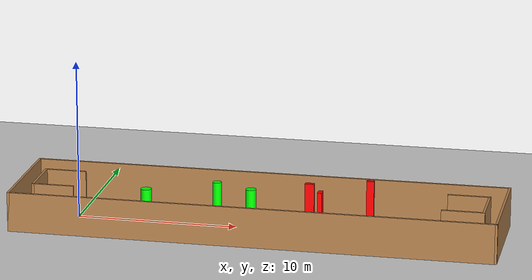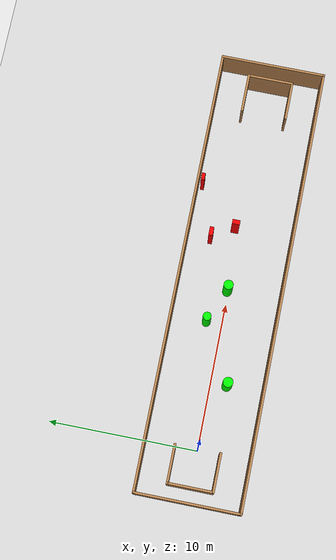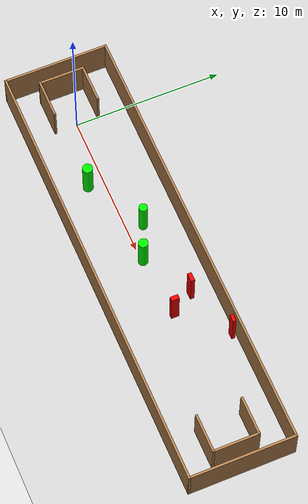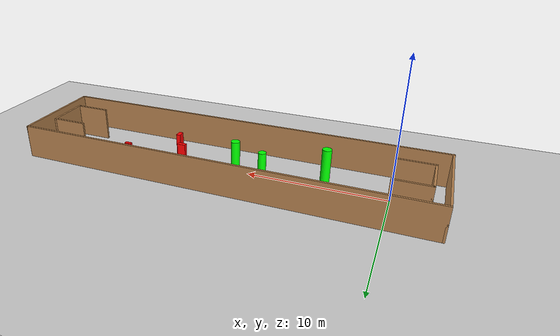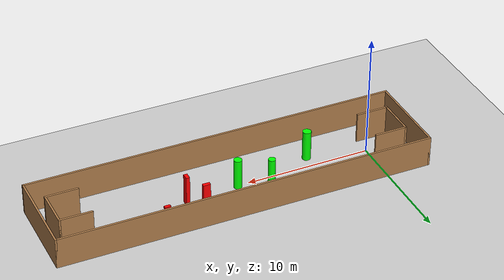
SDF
<sdf version="1.7">
 <world name="default">
  <light name="sun" type="directional">
   <pose>0 0 10 0 -0 0</pose>
   <diffuse>0.8 0.8 0.8 1</diffuse>
   <specular>0.2 0.2 0.2 1</specular>
   <attenuation>
    <range>1000</range>
    <constant>0.9</constant>
    <linear>0.01</linear>
    <quadratic>0.001</quadratic>
   </attenuation>
   <direction>-0.5 0.1 -0.9</direction>
   <spot><inner_angle>0</inner_angle><outer_angle>0</outer_angle><falloff>0</falloff></spot>
  </light>
  <model name="ground_plane">
   <static>1</static>
   <link name="link">
    <collision name="collision">
     <geometry><plane><normal>0 0 1</normal><size>100 100</size></plane></geometry>
     <surface>
      <contact><collide_bitmask>65535</collide_bitmask></contact>
      <friction><ode><mu>100</mu><mu2>50</mu2></ode></friction>
     </surface>
    </collision>
    <visual name="visual">
     <cast_shadows>0</cast_shadows>
     <geometry><plane><normal>0 0 1</normal><size>100 100</size></plane></geometry>
     <material>
      <script><uri>file://media/materials/scripts/gazebo.material</uri><name>Gazebo/Grey</name></script>
     </material>
    </visual>
   </link>
  </model>
  <gravity>0 0 -9.8</gravity>
  <magnetic_field>6e-06 2.3e-05 -4.2e-05</magnetic_field>
  <atmosphere type="adiabatic"/>
  <physics type="ode">
   <max_step_size>0.001</max_step_size>
   <real_time_factor>1</real_time_factor>
   <real_time_update_rate>1000</real_time_update_rate>
  </physics>
  <scene><ambient>0.4 0.4 0.4 1</ambient><background>0.7 0.7 0.7 1</background><shadows>1</shadows></scene>
  <spherical_coordinates>
   <surface_model>EARTH_WGS84</surface_model>
   <latitude_deg>0</latitude_deg>
   <longitude_deg>0</longitude_deg>
   <elevation>0</elevation>
   <heading_deg>0</heading_deg>
  </spherical_coordinates>
  <model name="my_base_walls">
   <link name="Wall_0">
    <collision name="Wall_0_Collision">
     <geometry><box><size>7.15 0.15 2.5</size></box></geometry>
     <pose>0 0 1.25 0 -0 0</pose>
    </collision>
    <visual name="Wall_0_Visual">
     <pose>0 0 1.25 0 -0 0</pose>
     <geometry><box><size>7.15 0.15 2.5</size></box></geometry>
     <material>
      <script><uri>file://media/materials/scripts/gazebo.material</uri><name>Gazebo/Wood</name></script>
      <ambient>1 1 1 1</ambient>
     </material>
     <meta><layer>0</layer></meta>
    </visual>
    <pose>-15 0 0 0 -0 1.5708</pose>
   </link>
   <link name="Wall_10">
    <collision name="Wall_10_Collision">
     <geometry><box><size>2.65 0.15 2.5</size></box></geometry>
     <pose>0 0 1.25 0 -0 0</pose>
    </collision>
    <visual name="Wall_10_Visual">
     <pose>0 0 1.25 0 -0 0</pose>
     <geometry><box><size>2.65 0.15 2.5</size></box></geometry>
     <material>
      <script><uri>file://media/materials/scripts/gazebo.material</uri><name>Gazebo/Wood</name></script>
      <ambient>1 1 1 1</ambient>
     </material>
     <meta><layer>0</layer></meta>
    </visual>
    <pose>-12.75 -1.5 0 0 -0 0</pose>
   </link>
   <link name="Wall_12">
    <collision name="Wall_12_Collision">
     <geometry><box><size>2.65 0.15 2.5</size></box></geometry>
     <pose>0 0 1.25 0 -0 0</pose>
    </collision>
    <visual name="Wall_12_Visual">
     <pose>0 0 1.25 0 -0 0</pose>
     <geometry><box><size>2.65 0.15 2.5</size></box></geometry>
     <material>
      <script><uri>file://media/materials/scripts/gazebo.material</uri><name>Gazebo/Wood</name></script>
      <ambient>1 1 1 1</ambient>
     </material>
     <meta><layer>0</layer></meta>
    </visual>
    <pose>-12.75 1.5 0 0 -0 0</pose>
   </link>
   <link name="Wall_14">
    <collision name="Wall_14_Collision">
     <geometry><box><size>3.15 0.15 2.5</size></box></geometry>
     <pose>0 0 1.25 0 -0 0</pose>
    </collision>
    <visual name="Wall_14_Visual">
     <pose>0 0 1.25 0 -0 0</pose>
     <geometry><box><size>3.15 0.15 2.5</size></box></geometry>
     <material>
      <script><uri>file://media/materials/scripts/gazebo.material</uri><name>Gazebo/Wood</name></script>
      <ambient>1 1 1 1</ambient>
     </material>
     <meta><layer>0</layer></meta>
    </visual>
    <pose>14 0 0 0 -0 -1.5708</pose>
   </link>
   <link name="Wall_15">
    <collision name="Wall_15_Collision">
     <geometry><box><size>2.65 0.15 2.5</size></box></geometry>
     <pose>0 0 1.25 0 -0 0</pose>
    </collision>
    <visual name="Wall_15_Visual">
     <pose>0 0 1.25 0 -0 0</pose>
     <geometry><box><size>2.65 0.15 2.5</size></box></geometry>
     <material>
      <script><uri>file://media/materials/scripts/gazebo.material</uri><name>Gazebo/Wood</name></script>
      <ambient>1 1 1 1</ambient>
     </material>
     <meta><layer>0</layer></meta>
    </visual>
    <pose>12.75 -1.5 0 0 -0 3.14159</pose>
   </link>
   <link name="Wall_17">
    <collision name="Wall_17_Collision">
     <geometry><box><size>2.65 0.15 2.5</size></box></geometry>
     <pose>0 0 1.25 0 -0 0</pose>
    </collision>
    <visual name="Wall_17_Visual">
     <pose>0 0 1.25 0 -0 0</pose>
     <geometry><box><size>2.65 0.15 2.5</size></box></geometry>
     <material>
      <script><uri>file://media/materials/scripts/gazebo.material</uri><name>Gazebo/Wood</name></script>
      <ambient>1 1 1 1</ambient>
     </material>
     <meta><layer>0</layer></meta>
    </visual>
    <pose>12.75 1.5 0 0 -0 3.14159</pose>
   </link>
   <link name="Wall_2">
    <collision name="Wall_2_Collision">
     <geometry><box><size>30.15 0.15 2.5</size></box></geometry>
     <pose>0 0 1.25 0 -0 0</pose>
    </collision>
    <visual name="Wall_2_Visual">
     <pose>0 0 1.25 0 -0 0</pose>
     <geometry><box><size>30.15 0.15 2.5</size></box></geometry>
     <material>
      <script><uri>file://media/materials/scripts/gazebo.material</uri><name>Gazebo/Wood</name></script>
      <ambient>1 1 1 1</ambient>
     </material>
     <meta><layer>0</layer></meta>
    </visual>
    <pose>-0 -3.5 0 0 -0 0</pose>
   </link>
   <link name="Wall_4">
    <collision name="Wall_4_Collision">
     <geometry><box><size>30.15 0.15 2.5</size></box></geometry>
     <pose>0 0 1.25 0 -0 0</pose>
    </collision>
    <visual name="Wall_4_Visual">
     <pose>0 0 1.25 0 -0 0</pose>
     <geometry><box><size>30.15 0.15 2.5</size></box></geometry>
     <material>
      <script><uri>file://media/materials/scripts/gazebo.material</uri><name>Gazebo/Wood</name></script>
      <ambient>1 1 1 1</ambient>
     </material>
     <meta><layer>0</layer></meta>
    </visual>
    <pose>-0 3.5 0 0 -0 0</pose>
   </link>
   <link name="Wall_6">
    <collision name="Wall_6_Collision">
     <geometry><box><size>7.15 0.15 2.5</size></box></geometry>
     <pose>0 0 1.25 0 -0 0</pose>
    </collision>
    <visual name="Wall_6_Visual">
     <pose>0 0 1.25 0 -0 0</pose>
     <geometry><box><size>7.15 0.15 2.5</size></box></geometry>
     <material>
      <script><uri>file://media/materials/scripts/gazebo.material</uri><name>Gazebo/Wood</name></script>
      <ambient>1 1 1 1</ambient>
     </material>
     <meta><layer>0</layer></meta>
    </visual>
    <pose>15 0 0 0 -0 -1.5708</pose>
   </link>
   <link name="Wall_9">
    <collision name="Wall_9_Collision">
     <geometry><box><size>3.15 0.15 2.5</size></box></geometry>
     <pose>0 0 1.25 0 -0 0</pose>
    </collision>
    <visual name="Wall_9_Visual">
     <pose>0 0 1.25 0 -0 0</pose>
     <geometry><box><size>3.15 0.15 2.5</size></box></geometry>
     <material>
      <script><uri>file://media/materials/scripts/gazebo.material</uri><name>Gazebo/Wood</name></script>
      <ambient>1 1 1 1</ambient>
     </material>
     <meta><layer>0</layer></meta>
    </visual>
    <pose>-14 0 0 0 -0 -1.5708</pose>
   </link>
   <static>1</static>
   <pose>11.5 0 0 0 -0 0</pose>
  </model>
  <model name="cylinder1">
   <static>1</static>
   <link name="link">
    <inertial>
     <mass>1</mass>
     <inertia><ixx>0.5</ixx><ixy>0</ixy><ixz>0</ixz><iyy>0.5</iyy><iyz>0</iyz><izz>1</izz></inertia>
    </inertial>
    <collision name="collision">
     <geometry><cylinder><radius>0.32157202351623554</radius><length>2.5</length></cylinder></geometry>
    </collision>
    <visual name="visual">
     <geometry><cylinder><radius>0.32157202351623554</radius><length>2.5</length></cylinder></geometry>
     <material>
      <ambient>0 1 0 1</ambient>
      <diffuse>0 1 0 1</diffuse>
      <specular>0.1 0.1 0.1 1</specular>
      <emissive>0 0 0 0</emissive>
     </material>
    </visual>
   </link>
   <pose>10.928828650232514 0.10265832091528893 1.25 0 0 0</pose>
  </model>
  <model name="cylinder2">
   <static>1</static>
   <link name="link">
    <inertial>
     <mass>1</mass>
     <inertia><ixx>0.5</ixx><ixy>0</ixy><ixz>0</ixz><iyy>0.5</iyy><iyz>0</iyz><izz>1</izz></inertia>
    </inertial>
    <collision name="collision">
     <geometry><cylinder><radius>0.2819768558510949</radius><length>2.5</length></cylinder></geometry>
    </collision>
    <visual name="visual">
     <geometry><cylinder><radius>0.2819768558510949</radius><length>2.5</length></cylinder></geometry>
     <material>
      <ambient>0 1 0 1</ambient>
      <diffuse>0 1 0 1</diffuse>
      <specular>0.1 0.1 0.1 1</specular>
      <emissive>0 0 0 0</emissive>
     </material>
    </visual>
   </link>
   <pose>8.588734025575414 1.0850510521081995 1.25 0 0 0</pose>
  </model>
  <model name="cylinder3">
   <static>1</static>
   <link name="link">
    <inertial>
     <mass>1</mass>
     <inertia><ixx>0.5</ixx><ixy>0</ixy><ixz>0</ixz><iyy>0.5</iyy><iyz>0</iyz><izz>1</izz></inertia>
    </inertial>
    <collision name="collision">
     <geometry><cylinder><radius>0.3372419352914227</radius><length>2.5</length></cylinder></geometry>
    </collision>
    <visual name="visual">
     <geometry><cylinder><radius>0.3372419352914227</radius><length>2.5</length></cylinder></geometry>
     <material>
      <ambient>0 1 0 1</ambient>
      <diffuse>0 1 0 1</diffuse>
      <specular>0.1 0.1 0.1 1</specular>
      <emissive>0 0 0 0</emissive>
     </material>
    </visual>
   </link>
   <pose>4.602690192109483 -1.0829706548058846 1.25 0 0 0</pose>
  </model>
  <model name="box1">
   <static>1</static>
   <link name="link">
    <inertial>
     <mass>1</mass>
     <inertia><ixx>0.083</ixx><ixy>0</ixy><ixz>0</ixz><iyy>0.083</iyy><iyz>0</iyz><izz>0.083</izz></inertia>
    </inertial>
    <collision name="collision">
     <geometry><box><size>0.29497864702300425 0.5200972820749052 2.5</size></box></geometry>
    </collision>
    <visual name="visual">
     <geometry><box><size>0.29497864702300425 0.5200972820749052 2.5</size></box></geometry>
     <material>
      <ambient>1 0 0 1</ambient>
      <diffuse>1 0 0 1</diffuse>
      <specular>0.1 0.1 0.1 1</specular>
      <emissive>0 0 0 0</emissive>
     </material>
    </visual>
    <sensor name="my_contact" type="contact">
     <contact><collision>box_collision</collision><topic>__default_topic__</topic></contact>
    </sensor>
   </link>
   <pose>15.207794940893272 0.40959871338979603 1.25 0 0 0</pose>
  </model>
  <model name="box2">
   <static>1</static>
   <link name="link">
    <inertial>
     <mass>1</mass>
     <inertia><ixx>0.083</ixx><ixy>0</ixy><ixz>0</ixz><iyy>0.083</iyy><iyz>0</iyz><izz>0.083</izz></inertia>
    </inertial>
    <collision name="collision">
     <geometry><box><size>0.4727971409686385 0.2265678449532367 2.5</size></box></geometry>
    </collision>
    <visual name="visual">
     <geometry><box><size>0.4727971409686385 0.2265678449532367 2.5</size></box></geometry>
     <material>
      <ambient>1 0 0 1</ambient>
      <diffuse>1 0 0 1</diffuse>
      <specular>0.1 0.1 0.1 1</specular>
      <emissive>0 0 0 0</emissive>
     </material>
    </visual>
    <sensor name="my_contact" type="contact">
     <contact><collision>box_collision</collision><topic>__default_topic__</topic></contact>
    </sensor>
   </link>
   <pose>17.876251334254825 3.1722001177968426 1.25 0 0 0</pose>
  </model>
  <model name="box3">
   <static>1</static>
   <link name="link">
    <inertial>
     <mass>1</mass>
     <inertia><ixx>0.083</ixx><ixy>0</ixy><ixz>0</ixz><iyy>0.083</iyy><iyz>0</iyz><izz>0.083</izz></inertia>
    </inertial>
    <collision name="collision">
     <geometry><box><size>0.5808043295228666 0.27532977961101346 2.5</size></box></geometry>
    </collision>
    <visual name="visual">
     <geometry><box><size>0.5808043295228666 0.27532977961101346 2.5</size></box></geometry>
     <material>
      <ambient>1 0 0 1</ambient>
      <diffuse>1 0 0 1</diffuse>
      <specular>0.1 0.1 0.1 1</specular>
      <emissive>0 0 0 0</emissive>
     </material>
    </visual>
    <sensor name="my_contact" type="contact">
     <contact><collision>box_collision</collision><topic>__default_topic__</topic></contact>
    </sensor>
   </link>
   <pose>14.277269985692419 1.9147108899803165 1.25 0 0 0</pose>
  </model>
 </world>
</sdf>
